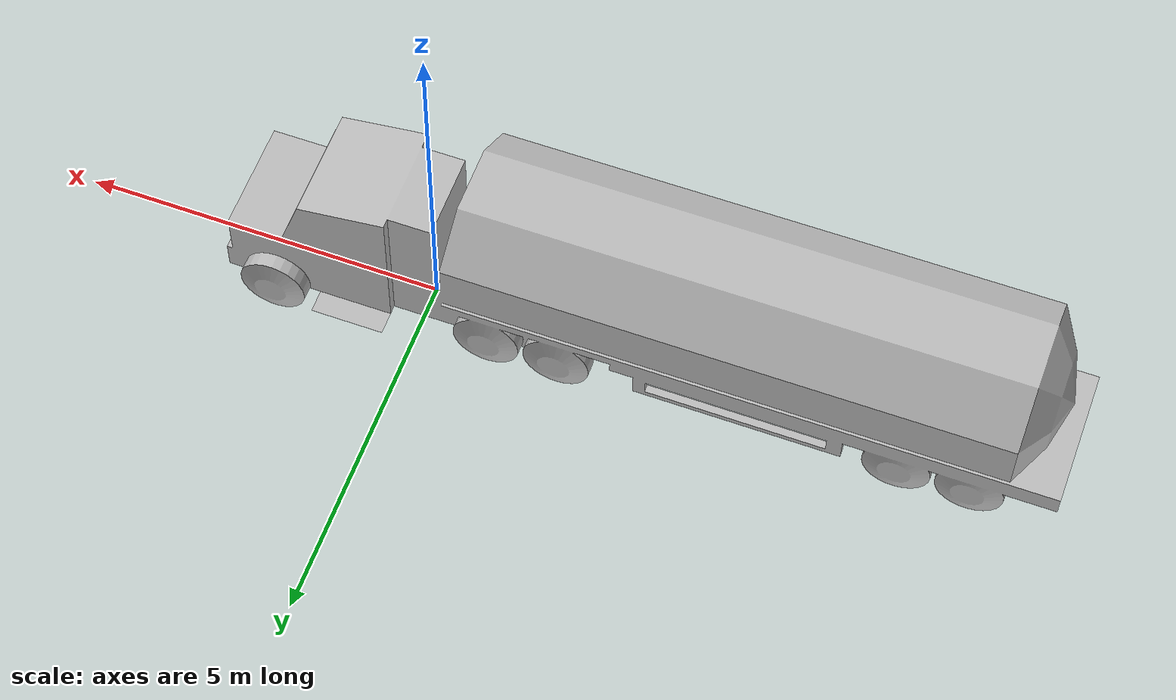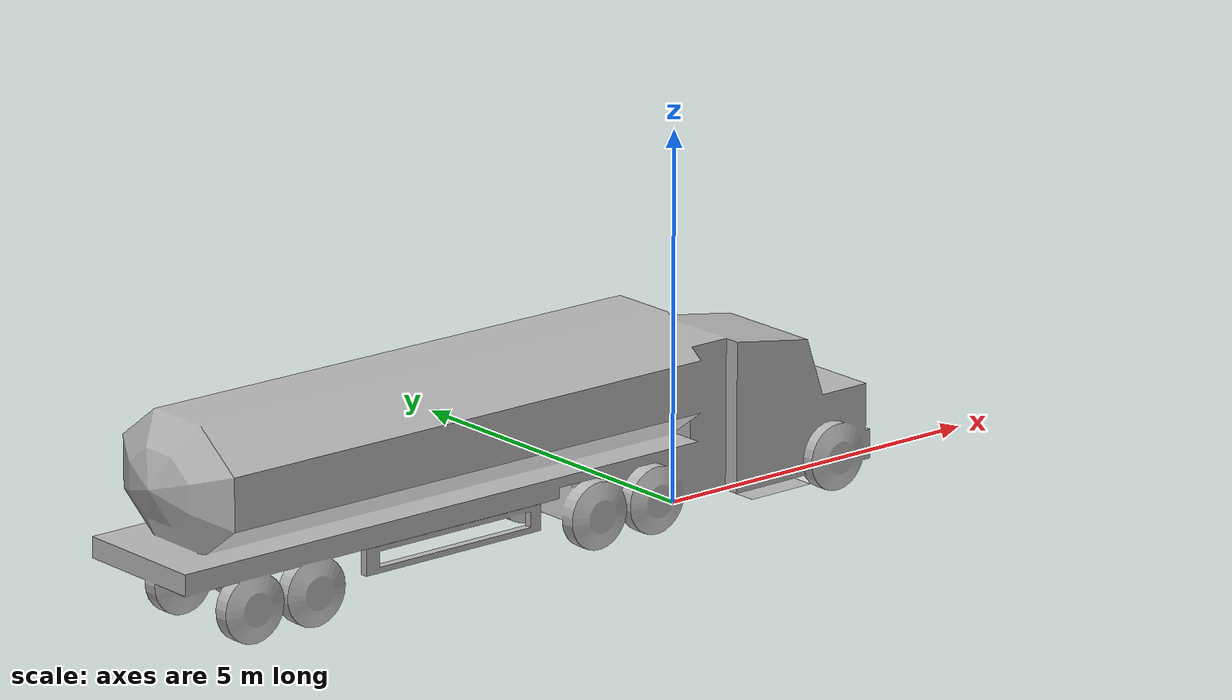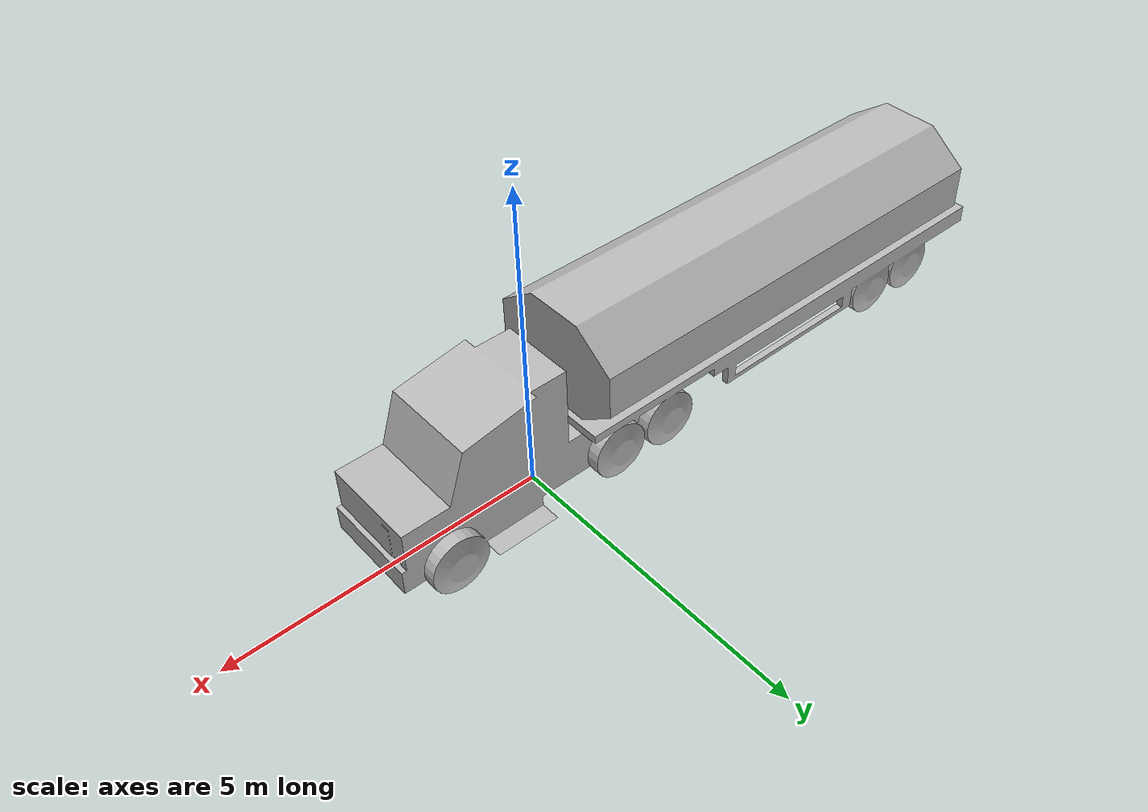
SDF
<?xml version="1.0" ?>
<sdf version="1.6">
  <model name="fuelTruck">
    <static>true</static>
    <link name="link">
      <collision name="collision">
        <geometry>
          <mesh>
            <scale>1 1 1</scale>
            <uri>model://fuel_truck/meshes/fuelTruck.stl</uri>
          </mesh>
        </geometry>
      </collision>
      <visual name="visual">
        <geometry>
          <mesh>
            <scale>1 1 1</scale>
            <uri>model://fuel_truck/meshes/fuelTruck.stl</uri>
          </mesh>
        </geometry>
      </visual>
    </link>
  </model>
</sdf>
